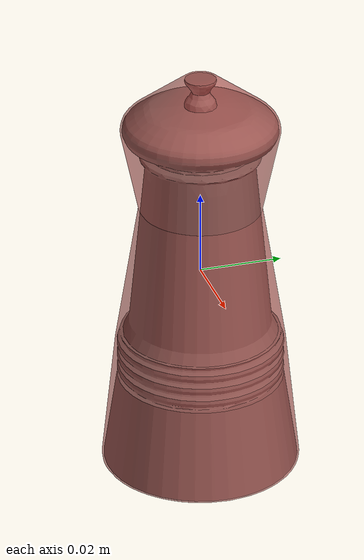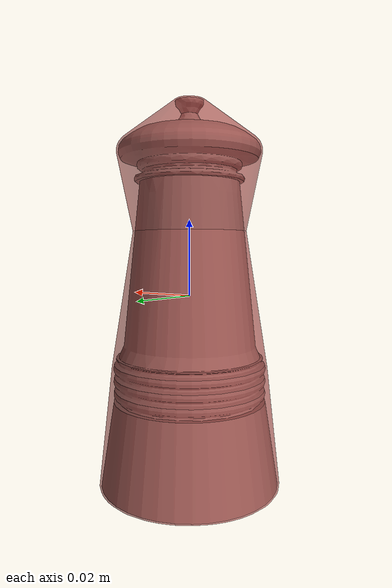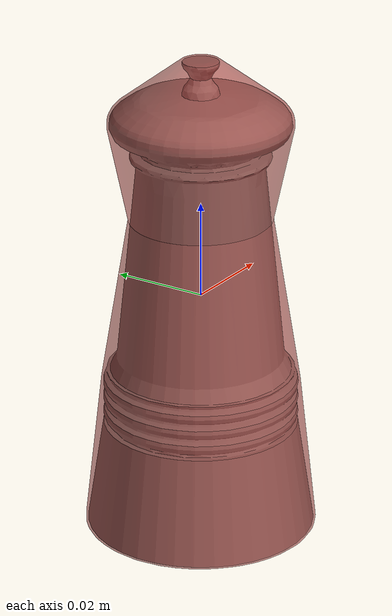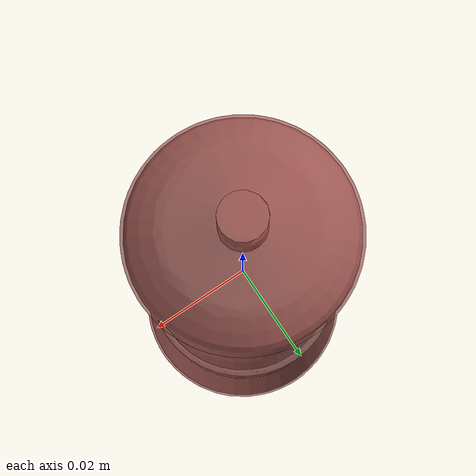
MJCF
<mujoco model="model">
  <option timestep="0.002" gravity="0.0 0.0 -9.81"/>
  <compiler angle="radian"/>
  <asset>
    <mesh file="visual/PepperShaker007.obj" name="PepperShaker007_vis"/>
    <mesh file="visual/prop.obj" name="PepperShaker007_prop_vis"/>
    <texture file="visual/T_BC001.png" name="PepperShaker007_material" type="2d"/>
    <material name="PepperShaker007_material" rgba="1 1 1 1.0" texture="PepperShaker007_material" shininess="0.5" specular="0.3103448502657381"/>
    <texture file="visual/T_BC001.png" name="PepperShaker007_prop_material" type="2d"/>
    <material name="PepperShaker007_prop_material" rgba="1 1 1 1.0" texture="PepperShaker007_prop_material" shininess="0.1" specular="5"/>
    <mesh file="collision/collision_mesh_collision_0.obj" name="PepperShaker007_collision_mesh_0"/>
    <mesh file="collision/collision_mesh_collision_1.obj" name="PepperShaker007_collision_mesh_1"/>
  </asset>
  <default>
    <default class="visual">
      <geom conaffinity="0" contype="0" group="1" type="mesh"/>
    </default>
    <default class="collision">
      <geom group="0" rgba="0.5 0 0 0.5" density="1000.0"/>
    </default>
    <default class="spawn">
      <geom group="0" rgba="1 1 1 0.5" contype="0" conaffinity="0"/>
      <site group="0" rgba="1 1 1 0.5"/>
    </default>
    <default class="region">
      <geom group="1" conaffinity="0" contype="0" rgba="0 1 0 0" mass="0"/>
    </default>
  </default>
  <worldbody>
    <body>
      <body name="object">
        <geom mesh="PepperShaker007_vis" type="mesh" solimp="0.998 0.998 0.001" solref="0.001 1" friction="0.95 0.3 0.1" class="visual" material="PepperShaker007_material"/>
        <body name="PepperShaker007_prop">
          <geom mesh="PepperShaker007_prop_vis" type="mesh" solimp="0.998 0.998 0.001" solref="0.001 1" friction="0.95 0.3 0.1" class="visual" material="PepperShaker007_prop_material"/>
        </body>
        <geom class="region" name="reg_bbox" type="box" pos="0.0 0.0 -2.4099999999978305e-06" size="0.0241624 0.02416169 0.05074726"/>
        <geom mesh="PepperShaker007_collision_mesh_0" type="mesh" class="collision"/>
        <geom mesh="PepperShaker007_collision_mesh_1" type="mesh" class="collision"/>
      </body>
    </body>
  </worldbody>
  <actuator/>
</mujoco>
